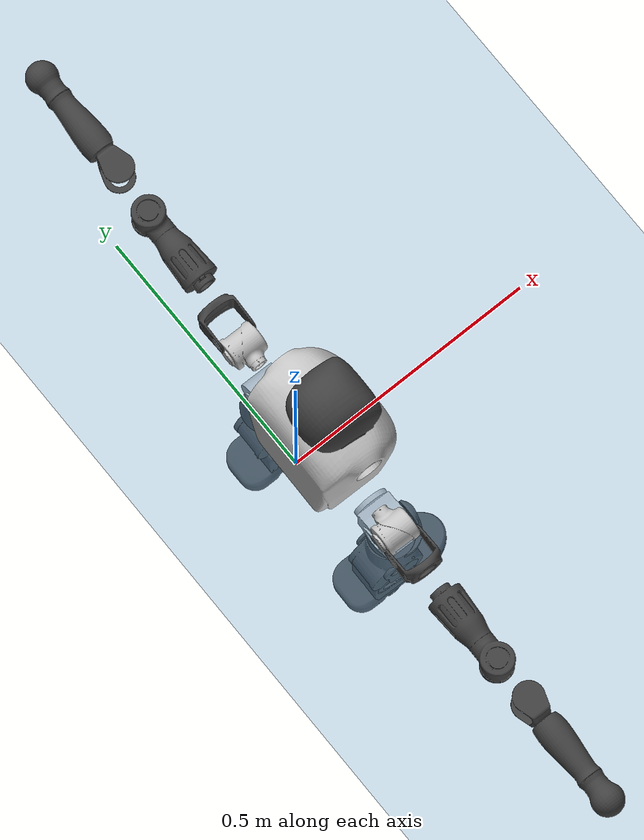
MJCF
<mujoco model="T1">
  <compiler angle="radian" assetdir="assets" balanceinertia="true" inertiafromgeom="false"/>

  <option timestep="0.005" density="1.2" viscosity="2e-05"/>

  <size nkey="1"/>

  <visual>
    <quality shadowsize="8192"/>
    <map shadowclip="0.5"/>
  </visual>

  <default>
    <default class="/">
      <joint armature="0.01" damping="0.01" frictionloss="0.1"/>
      <geom contype="0" conaffinity="0" group="1" solref="-1000 -80"/>
      <site size="0.01 0.005 0.005" group="5"/>
      <general forcelimited="true" biastype="affine" gainprm="25" biasprm="0 -25 -0.6"/>
      <default class="t1">
        <geom rgba="0.25 0.25 0.25 1"/>
        <default class="visual">
          <geom type="mesh" group="2"/>
        </default>
        <default class="collision">
          <geom group="3"/>
        </default>
        <default class="foot">
          <geom size="0.1115 0.05 0.015" type="box" condim="6" group="4" priority="1" solimp="0.015 1 0.015"/>
        </default>
        <default class="reward_collision_sphere">
          <geom group="5" rgba="1 0 0 1"/>
        </default>
      </default>
    </default>
  </default>

  <asset>
    <texture type="skybox" colorspace="auto" name="//unnamed_texture_0" builtin="gradient" rgb1="0.95 0.95 0.95" rgb2="0.95 0.95 0.95" width="100" height="600"/>
    <texture type="2d" colorspace="auto" name="texplane" builtin="checker" rgb1="0.345 0.575 0.748" rgb2="0.345 0.575 0.748" markrgb="1 1 1" width="512" height="512"/>
    <material name="MatPlane" class="/" texture="texplane" texuniform="true" texrepeat="2 2" specular="0.9"/>
    <mesh name="Trunk" class="/" file="Trunk.stl"/>
    <mesh name="H1" class="/" file="H1.stl"/>
    <mesh name="H2" class="/" file="H2.stl"/>
    <mesh name="AL1" class="/" file="AL1.stl"/>
    <mesh name="AL2" class="/" file="AL2.stl"/>
    <mesh name="AL3" class="/" file="AL3.stl"/>
    <mesh name="left_hand_link" class="/" file="left_hand_link.stl"/>
    <mesh name="AR1" class="/" file="AR1.stl"/>
    <mesh name="AR2" class="/" file="AR2.stl"/>
    <mesh name="AR3" class="/" file="AR3.stl"/>
    <mesh name="right_hand_link" class="/" file="right_hand_link.stl"/>
    <mesh name="Waist" class="/" file="Waist.stl"/>
    <mesh name="Hip_Pitch_Left" class="/" file="Hip_Pitch_Left.stl"/>
    <mesh name="Hip_Roll_Left" class="/" file="Hip_Roll_Left.stl"/>
    <mesh name="Hip_Yaw_Left" class="/" file="Hip_Yaw_Left.stl"/>
    <mesh name="Shank_Left" class="/" file="Shank_Left.stl"/>
    <mesh name="Ankle_Cross_Left" class="/" file="Ankle_Cross_Left.stl"/>
    <mesh name="left_foot_link" class="/" file="left_foot_link.stl"/>
    <mesh name="Hip_Pitch_Right" class="/" file="Hip_Pitch_Right.stl"/>
    <mesh name="Hip_Roll_Right" class="/" file="Hip_Roll_Right.stl"/>
    <mesh name="Hip_Yaw_Right" class="/" file="Hip_Yaw_Right.stl"/>
    <mesh name="Shank_Right" class="/" file="Shank_Right.stl"/>
    <mesh name="Ankle_Cross_Right" class="/" file="Ankle_Cross_Right.stl"/>
    <mesh name="right_foot_link" class="/" file="right_foot_link.stl"/>
  </asset>

  <worldbody>
    <geom name="floor" class="/" size="100 100 0.125" type="plane" group="0" material="MatPlane"/>
    <light name="toplight_shadow" class="/" pos="0 0 5" dir="0.0990148 0.0990148 -0.990148" type="directional" ambient="0.04 0.04 0.04" diffuse="0.55 0.55 0.55" specular="0.12 0.12 0.12"/>
    <light name="toplight_fill" class="/" pos="0 0 5" dir="0.0990148 0.0990148 -0.990148" type="directional" castshadow="false" ambient="0.04 0.04 0.04" diffuse="0.3 0.3 0.3" specular="0.08 0.08 0.08"/>
    <body name="trunk" childclass="t1" pos="-0.000743901 -0.00968285 0.0140983" quat="0.999972 0.000787014 -0.00438409 -0.00607157">
      <inertial pos="0.0494639 0.000963894 0.0606772" quat="0.99993 -0.00367951 -0.0107795 -0.00335503" mass="13.8814" diaginertia="0.0792571 0.746727 0.00517984"/>
      <joint name="//unnamed_joint_0" type="free" armature="0" damping="0" frictionloss="0"/>
      <geom name="//unnamed_geom_1" class="visual" rgba="0.76 0.76 0.76 1" mesh="Trunk"/>
      <geom name="//unnamed_geom_2" class="collision" size="0.0768799 0.102507 0.15376" pos="0.0554451 0 0.0709" type="box"/>
      <geom name="//unnamed_geom_3" class="reward_collision_sphere" size="0.117883" pos="0.0554451 0 0.0590833"/>
      <geom name="//unnamed_geom_4" class="reward_collision_sphere" size="0.015376" pos="0.0554451 0.132624 0"/>
      <geom name="//unnamed_geom_5" class="reward_collision_sphere" size="0.015376" pos="0.0554451 -0.132624 0"/>
      <geom name="//unnamed_geom_6" class="reward_collision_sphere" size="0.015376" pos="0.0554451 0.16695 0.10635"/>
      <geom name="//unnamed_geom_7" class="reward_collision_sphere" size="0.015376" pos="0.0554451 -0.16695 0.10635"/>
      <site name="imu" pos="0.0694882 0.0102359 -0.00157592" size="0.0102507"/>
      <camera name="track" pos="0 -3.12055 0" quat="0.707107 0.707107 0 0" mode="trackcom"/>
      <camera name="ego_camera" pos="0.112738 0 0.24815" quat="-0.5 -0.5 0.5 0.5"/>
      <body name="H1" pos="0.0479028 -0.000176793 0.133308" quat="0.999978 0.0050772 0.00158725 -0.00406965">
        <inertial pos="-0.0121038 -0.0100925 0.0292371" quat="0.76581 -0.0174247 0.00516524 0.64281" mass="0.401888" diaginertia="0.000139188 0.00165932 1.16302e-05"/>
        <joint name="AAHead_yaw" pos="0 0 0" axis="0.0011932 -0.00733059 0.999972" range="-1.25634 1.67209" armature="0.00938081" damping="0.044184" frictionloss="0.0688219"/>
        <geom name="//unnamed_geom_8" class="visual" mesh="H1"/>
        <body name="H2" pos="0.00473495 -0.00499866 0.0258847" quat="0.999973 -0.00010406 9.62472e-05 0.00729598">
          <inertial pos="0.00369811 -0.00158046 0.0576924" quat="0.988648 0.105688 -0.0727794 -0.078152" mass="0.811323" diaginertia="0.0015624 0.0204095 0.000126014"/>
          <joint name="Head_pitch" pos="0 0 0" axis="0.0641233 -0.997661 0.0236587" stiffness="0.0375329" range="-1.00511 0.0692746" armature="0.00408708" damping="0" frictionloss="0.0276081"/>
          <geom name="//unnamed_geom_9" class="visual" mesh="H2"/>
          <geom name="//unnamed_geom_10" class="collision" size="0.0820052" pos="0.00924085 0 0.0649917"/>
          <geom name="//unnamed_geom_11" class="reward_collision_sphere" size="0.0922559" pos="0.0184817 0 0.0590833"/>
        </body>
      </body>
      <body name="AL1" pos="0.0389607 0.156841 0.121051" quat="0.999999 0.000128923 0.00128307 0.000422788">
        <inertial pos="0.0142571 0.0771931 0.00767573" quat="0.49395 0.528955 -0.464713 0.510158" mass="0.636553" diaginertia="0.000961102 0.0107045 2.40465e-05"/>
        <joint name="Left_Shoulder_Pitch" pos="0 0 0" axis="-0.0057638 0.999964 -0.00615743" range="-3.24348 1.23585" armature="0.00904212" damping="0" frictionloss="0.137576"/>
        <geom name="//unnamed_geom_12" class="visual" rgba="0.76 0.76 0.76 1" mesh="AL1"/>
        <body name="AL2" pos="-0.00173168 0.0750975 0.0143217" quat="0.999976 0.00628434 1.25506e-05 0.00297216">
          <inertial pos="0.00998094 0.0593507 0.0127272" quat="0.497494 0.505903 -0.510159 0.486107" mass="0.148027" diaginertia="0.000287004 0.00357633 1.19755e-05"/>
          <joint name="Left_Shoulder_Roll" pos="0 0 0" axis="-0.997498 -0.055113 0.0442825" range="-1.56222 1.82772" armature="0.00856348" damping="0" frictionloss="0.174418"/>
          <geom name="//unnamed_geom_13" class="visual" mesh="AL2"/>
          <body name="AL3" pos="0.0144146 0.102275 0.00302112" quat="0.999999 -0.00100536 2.04263e-05 -0.000250993">
            <inertial pos="0.00364044 0.13262 -0.0129938" quat="0.704744 0.70945 0.00371294 -0.00164608" mass="1.09818" diaginertia="0.00775972 0.119181 4.86356e-05"/>
            <joint name="Left_Elbow_Pitch" pos="0 0 0" axis="-0.0212094 -0.997795 -0.0628849" range="-2.34457 2.26839" armature="0.0133652" damping="0.00841065" frictionloss="0.0667071"/>
            <geom name="//unnamed_geom_14" class="visual" mesh="AL3"/>
            <geom name="//unnamed_geom_15" class="collision" size="0.030752 0.0768799" pos="0 0.0780139 0" quat="0.707105 0.707108 0 0" type="cylinder"/>
            <geom name="//unnamed_geom_16" class="reward_collision_sphere" size="0.0369024"/>
            <body name="left_hand_link" pos="0.00982588 0.243079 -0.0151013" quat="0.999995 0.0017251 -0.00141582 -0.00218281">
              <inertial pos="-0.000249046 0.163443 -0.0103658" quat="0.708548 0.705655 0.00201717 -0.00251836" mass="0.31219" diaginertia="0.00528724 0.0535231 1.2599e-05"/>
              <joint name="Left_Elbow_Yaw" pos="0 0 0" axis="-0.0145698 -0.062334 0.997949" stiffness="0.0532583" range="-2.5523 -0.0102405" armature="0.00931154" damping="0.00564013" frictionloss="0.0537172"/>
              <geom name="//unnamed_geom_17" class="visual" mesh="left_hand_link"/>
              <geom name="//unnamed_geom_18" class="collision" size="0.030752 0.0896932" pos="0 0.202836 0" quat="0.707105 0.707108 0 0" type="cylinder"/>
              <geom name="//unnamed_geom_19" class="reward_collision_sphere" size="0.0512533"/>
              <geom name="//unnamed_geom_20" class="reward_collision_sphere" size="0.0358773" pos="0 0.17163 0"/>
              <geom name="//unnamed_geom_21" class="reward_collision_sphere" size="0.0358773" pos="0 0.33546 0"/>
            </body>
          </body>
        </body>
      </body>
      <body name="AR1" pos="0.0418411 -0.167479 0.117121" quat="0.999976 0.00168371 0.00283769 -0.00602236">
        <inertial pos="-0.000367449 -0.062739 -0.00425384" quat="0.471917 0.512602 -0.516391 0.49787" mass="0.620164" diaginertia="0.00113877 0.0129723 2.26562e-05"/>
        <joint name="Right_Shoulder_Pitch" pos="0 0 0" axis="0.0149499 -0.999666 0.0210675" stiffness="0.0629939" range="-1.23708 3.11586" armature="0.012986" damping="0.0691037" frictionloss="0.0913144"/>
        <geom name="//unnamed_geom_22" class="visual" rgba="0.76 0.76 0.76 1" mesh="AR1"/>
        <body name="AR2" pos="0.000283929 -0.0789315 -0.00545495" quat="0.999989 0.00320474 -0.00140168 0.00312229">
          <inertial pos="0.0103547 -0.0595855 -0.010061" quat="0.512635 0.486364 -0.511871 0.488511" mass="0.197261" diaginertia="0.000216725 0.00327317 1.45669e-05"/>
          <joint name="Right_Shoulder_Roll" pos="0 0 0" axis="-0.999994 0.00320759 0.00140932" stiffness="0.00675808" range="-1.83992 1.57973" armature="0.00901055" damping="0" frictionloss="0.0373683"/>
          <geom name="//unnamed_geom_23" class="visual" mesh="AR2"/>
          <body name="AR3" pos="-0.00427629 -0.106501 0.00565192" quat="0.999997 -8.46404e-05 0.00158543 0.00189663">
            <inertial pos="0.0146134 -0.133305 -0.00430005" quat="0.706161 0.706114 -0.0506586 -0.013146" mass="0.86797" diaginertia="0.00930993 0.130395 4.44407e-05"/>
            <joint name="Right_Elbow_Pitch" pos="0 0 0" axis="-0.039511 0.99915 -0.011747" stiffness="0.0762563" range="-2.25742 2.43061" armature="0.0166147" damping="0.0115146" frictionloss="0.113177"/>
            <geom name="//unnamed_geom_24" class="visual" mesh="AR3"/>
            <geom name="//unnamed_geom_25" class="collision" size="0.030752 0.0768799" pos="0 -0.0780139 0" quat="0.707105 0.707108 0 0" type="cylinder"/>
            <geom name="//unnamed_geom_26" class="reward_collision_sphere" size="0.0369024"/>
            <body name="right_hand_link" pos="0.0021337 -0.228958 -0.0146686" quat="1 0.000609475 -0.000242054 0.00017408">
              <inertial pos="0.00981117 -0.182007 0.00574087" quat="0.707751 0.705967 -0.0217843 0.0149826" mass="0.382581" diaginertia="0.00555046 0.089274 1.53393e-05"/>
              <joint name="Right_Elbow_Yaw" pos="0 0 0" axis="0.0226649 -0.0146321 0.999636" stiffness="0.0265553" range="0.0366041 2.4244" armature="0.0136786" damping="0.0433659" frictionloss="0.0954621"/>
              <geom name="//unnamed_geom_27" class="visual" mesh="right_hand_link"/>
              <geom name="//unnamed_geom_28" class="collision" size="0.030752 0.0896932" pos="0 -0.202836 0" quat="0.707105 0.707108 0 0" type="cylinder"/>
              <geom name="//unnamed_geom_29" class="reward_collision_sphere" size="0.0512533"/>
              <geom name="//unnamed_geom_30" class="reward_collision_sphere" size="0.0358773" pos="0 -0.17163 0"/>
              <geom name="//unnamed_geom_31" class="reward_collision_sphere" size="0.0358773" pos="0 -0.33546 0"/>
            </body>
          </body>
        </body>
      </body>
      <body name="Waist" pos="0.0586123 0.00340987 -0.0780471" quat="1 -0.000225691 0.000356876 0.000191268">
        <inertial pos="-0.00640638 -0.000499609 -0.00243673" quat="0.98356 -0.000440624 -0.180543 0.00366163" mass="2.67699" diaginertia="0.00383794 0.0387254 0.000361399"/>
        <joint name="Waist" pos="0 0 0" axis="0.00521219 0.0230829 0.99972" stiffness="0.0461154" range="-1.35365 1.40724" armature="0.0108929" damping="0.0767339" frictionloss="0.097658"/>
        <geom name="//unnamed_geom_32" class="visual" mesh="Waist"/>
        <body name="Hip_Pitch_Left" pos="-0.000596978 0.150161 -0.0127732" quat="1 -6.96324e-06 -2.48406e-05 -4.33122e-06">
          <inertial pos="0.0101719 -0.011962 0.00431982" quat="0.975876 0.215906 0.0284754 -0.015467" mass="0.926195" diaginertia="0.00108751 0.0134848 8.75755e-05"/>
          <joint name="Left_Hip_Pitch" pos="0 0 0" axis="0.0257011 0.998987 0.0369384" stiffness="0.058918" range="-2.03715 1.5616" armature="0.0103893" damping="0.0692355" frictionloss="0.165311"/>
          <geom name="//unnamed_geom_33" class="visual" rgba="0.76 0.76 0.76 1" mesh="Hip_Pitch_Left"/>
          <body name="Hip_Roll_Left" pos="-0.0073625 0.000179959 -0.0125917" quat="1 3.44241e-05 0.000205307 -0.000178798">
            <inertial pos="0.00217134 0.00383967 -0.0314558" quat="0.720969 0.00665681 0.022019 0.692586" mass="0.367308" diaginertia="0.00106525 0.0108103 3.19847e-05"/>
            <joint name="Left_Hip_Roll" pos="0 0 0" axis="-0.999568 0.0245516 -0.016144" range="-1.78069 0.178839" armature="0.0107213" damping="0" frictionloss="0.156257"/>
            <geom name="//unnamed_geom_34" class="visual" mesh="Hip_Roll_Left"/>
            <geom name="//unnamed_geom_35" class="reward_collision_sphere" size="0.0563786"/>
            <body name="Hip_Yaw_Left" pos="0.0114094 -0.00342307 -0.0635465" quat="1 -1.89552e-05 -9.92922e-05 -0.000219189">
              <inertial pos="-0.0103923 -7.66258e-05 -0.0390393" quat="0.706534 -0.00884061 -0.0215823 0.707295" mass="2.62527" diaginertia="0.013903 0.217506 0.000187596"/>
              <joint name="Left_Hip_Yaw" pos="0 0 0" axis="-0.0546981 0.0016194 -0.998502" stiffness="0.0773082" range="-1.01507 0.784836" armature="0.0160741" damping="0.0550283" frictionloss="0.168547"/>
              <geom name="//unnamed_geom_36" class="visual" mesh="Hip_Yaw_Left"/>
              <geom name="//unnamed_geom_37" class="collision" size="0.0512533 0.0820052" type="cylinder"/>
              <body name="Shank_Left" pos="-0.00385472 -0.0135485 -0.0915003" quat="0.999973 0.00322863 -0.00603035 0.00266336">
                <inertial pos="-0.01354 0.0159487 -0.0670866" quat="0.997795 0.00998287 -0.0639342 0.0147911" mass="1.67859" diaginertia="0.0179688 0.293053 0.000119212"/>
                <joint name="Left_Knee_Pitch" pos="0 0 0" axis="-0.024463 0.999143 0.0333837" range="0.0938366 2.31976" armature="0.00483692" damping="0.0318313" frictionloss="0.17129"/>
                <geom name="//unnamed_geom_38" class="visual" mesh="Shank_Left"/>
                <geom name="//unnamed_geom_39" class="collision" size="0.0512533 0.0768799" pos="0 0 -0.0709" type="cylinder"/>
                <geom name="//unnamed_geom_40" class="reward_collision_sphere" size="0.0666293"/>
                <body name="Ankle_Cross_Left" pos="0.0145582 0.00616378 -0.168109" quat="1 0.000204578 0.000219958 -0.000536302">
                  <inertial pos="-0.00515348 0.00176513 -0.00562016" quat="0.404372 0.521894 0.5644 0.495542" mass="0.0680162" diaginertia="1.93356e-05 0.000227001 7.674e-07"/>
                  <joint name="Left_Ankle_Pitch" pos="0 0 0" axis="-0.0459471 0.998926 -0.00590906" range="-0.858969 0.604358" armature="0.0109306" damping="0.00592946" frictionloss="0.101709"/>
                  <geom name="//unnamed_geom_41" class="visual" mesh="Ankle_Cross_Left"/>
                  <body name="left_foot_link" pos="-0.0107276 -0.00037614 -0.00972021" quat="0.999989 -0.00174268 -0.00151998 0.00416313">
                    <inertial pos="-0.00115004 -0.000731673 -0.0207476" quat="-0.00175707 0.620751 -0.0047758 0.783992" mass="0.889085" diaginertia="0.00221744 0.0241391 0.000187258"/>
                    <joint name="Left_Ankle_Roll" pos="0 0 0" axis="-0.999006 0.0429501 0.011897" range="-0.234825 0.296144" armature="0.00981013" damping="0" frictionloss="0.1059"/>
                    <geom name="//unnamed_geom_42" class="visual" mesh="left_foot_link"/>
                    <geom name="left_foot" class="foot" size="0.0569557 0.0245296 0.0110169" pos="0.00924085 0 -0.0088625"/>
                    <geom name="//unnamed_geom_44" class="reward_collision_sphere" size="0.0533034" pos="0.00924085 0 -0.0088625"/>
                    <geom name="//unnamed_geom_45" class="reward_collision_sphere" size="0.030752" pos="0.0877881 -0.0358864 -0.0088625"/>
                    <geom name="//unnamed_geom_46" class="reward_collision_sphere" size="0.030752" pos="-0.064686 -0.0358864 -0.0088625"/>
                    <site name="left_foot" class="foot" pos="0.00924085 0 -0.0088625" size="0.0102507"/>
                  </body>
                </body>
              </body>
            </body>
          </body>
        </body>
        <body name="Hip_Pitch_Right" pos="0.0109865 -0.165713 -0.0127309" quat="0.999976 0.000298809 -0.00667819 -0.00167241">
          <inertial pos="0.0017723 0.0266041 -0.0153172" quat="0.979377 -0.201382 0.00582825 0.0152265" mass="1.03859" diaginertia="0.0011087 0.0125437 7.58749e-05"/>
          <joint name="Right_Hip_Pitch" pos="0 0 0" axis="-0.00338945 -0.999982 -0.00504097" stiffness="0.0442609" range="-1.75723 2.05282" armature="0.0103658" damping="0" frictionloss="0.0281313"/>
          <geom name="//unnamed_geom_47" class="visual" rgba="0.76 0.76 0.76 1" mesh="Hip_Pitch_Right"/>
          <body name="Hip_Roll_Right" pos="0.0130831 0.000929706 -0.0231561" quat="1 -0.000238091 -0.000128377 -0.000260738">
            <inertial pos="0.00697795 0.00097485 -0.039413" quat="0.704867 -0.0074873 -0.00602096 0.709275" mass="0.415748" diaginertia="0.00140471 0.0128996 3.43224e-05"/>
            <joint name="Right_Hip_Roll" pos="0 0 0" axis="-0.999168 -0.0111089 -0.0392497" range="-0.394681 1.69661" armature="0.00970305" damping="0.0462747" frictionloss="0.0414066"/>
            <geom name="//unnamed_geom_48" class="visual" mesh="Hip_Roll_Right"/>
            <geom name="//unnamed_geom_49" class="reward_collision_sphere" size="0.0563786"/>
            <body name="Hip_Yaw_Right" pos="-0.011508 -0.00107693 -0.0606865" quat="1 0.000303763 -0.000426891 0.000119797">
              <inertial pos="0.00557427 -0.015575 -0.0566323" quat="0.713862 -0.0345375 -0.0330878 0.698651" mass="2.99698" diaginertia="0.017286 0.258894 0.000240584"/>
              <joint name="Right_Hip_Yaw" pos="0 0 0" axis="-0.000678482 -0.0314907 -0.999504" stiffness="0.0179721" range="-1.07124 0.966545" armature="0.0105008" damping="0" frictionloss="0.100254"/>
              <geom name="//unnamed_geom_50" class="visual" mesh="Hip_Yaw_Right"/>
              <geom name="//unnamed_geom_51" class="collision" size="0.0512533 0.0820052" type="cylinder"/>
              <body name="Shank_Right" pos="-0.0116281 0.000706463 -0.0938958" quat="1 0.000296231 -0.000179076 0.000345771">
                <inertial pos="0.0106685 -0.00639666 -0.0624517" quat="0.996837 -0.0284799 -0.0723597 0.0163833" mass="1.98937" diaginertia="0.029381 0.32988 0.000164905"/>
                <joint name="Right_Knee_Pitch" pos="0 0 0" axis="-0.00150072 -0.999998 0.00146779" range="-2.35773 0.26116" armature="0.0107018" damping="0" frictionloss="0.155111"/>
                <geom name="//unnamed_geom_52" class="visual" mesh="Shank_Right"/>
                <geom name="//unnamed_geom_53" class="collision" size="0.0512533 0.0768799" pos="0 0 -0.0709" type="cylinder"/>
                <geom name="//unnamed_geom_54" class="reward_collision_sphere" size="0.0666293"/>
                <body name="Ankle_Cross_Right" pos="0.00830372 0.00748841 -0.152804" quat="0.999995 -0.00273793 -0.000865913 -0.000927755">
                  <inertial pos="-0.00310571 0.00827317 -0.0033787" quat="0.461623 0.528033 0.574108 0.422475" mass="0.0927866" diaginertia="2.09022e-05 0.000260654 8.79587e-07"/>
                  <joint name="Right_Ankle_Pitch" pos="0 0 0" axis="-0.000582267 -0.999996 0.00266951" range="-0.668716 0.679397" armature="0.011616" damping="0" frictionloss="0.106748"/>
                  <geom name="//unnamed_geom_55" class="visual" mesh="Ankle_Cross_Right"/>
                  <body name="right_foot_link" pos="0.00283189 0.00335358 -0.0165767" quat="1 -4.64896e-05 5.67653e-05 7.47327e-05">
                    <inertial pos="-0.00183686 0.00647104 -0.0203556" quat="0.0112502 0.612608 -0.00106159 0.790306" mass="0.759154" diaginertia="0.00178844 0.024384 0.000165346"/>
                    <joint name="Right_Ankle_Roll" pos="0 0 0" axis="-1 9.51007e-05 0.000595057" range="-0.342773 0.432065" armature="0.00921073" damping="0.0373763" frictionloss="0.0211874"/>
                    <geom name="//unnamed_geom_56" class="visual" mesh="right_foot_link"/>
                    <geom name="right_foot" class="foot" size="0.0693007 0.0808129 0.00620846" pos="0.00924085 0 -0.0088625"/>
                    <geom name="//unnamed_geom_58" class="reward_collision_sphere" size="0.0410026"/>
                    <geom name="//unnamed_geom_59" class="reward_collision_sphere" size="0.030752" pos="0.00924085 0 -0.0088625"/>
                    <geom name="//unnamed_geom_60" class="reward_collision_sphere" size="0.030752" pos="0.0877881 0.0358864 -0.0088625"/>
                    <geom name="//unnamed_geom_61" class="reward_collision_sphere" size="0.030752" pos="-0.064686 0.0358864 -0.0088625"/>
                    <site name="right_foot" class="foot" pos="0.00924085 0 -0.0088625" size="0.0102507"/>
                  </body>
                </body>
              </body>
            </body>
          </body>
        </body>
      </body>
    </body>
  </worldbody>

  <contact>
    <pair class="/" geom1="floor" geom2="left_foot" name="//unnamed_contact_0"/>
    <pair class="/" geom1="floor" geom2="right_foot" name="//unnamed_contact_1"/>
  </contact>

  <actuator>
    <general name="AAHead_yaw" class="/" joint="AAHead_yaw" forcerange="-6.90475 6.90475" gainprm="18.3585" biasprm="0 -18.3585 -0.594868"/>
    <general name="Head_pitch" class="/" joint="Head_pitch" forcerange="-5.15578 5.15578" gainprm="18.3585" biasprm="0 -18.3585 -0.594868"/>
    <general name="Left_Shoulder_Pitch" class="/" joint="Left_Shoulder_Pitch" forcerange="-23.4164 23.4164" gainprm="18.3585" biasprm="0 -18.3585 -0.594868"/>
    <general name="Left_Shoulder_Roll" class="/" joint="Left_Shoulder_Roll" forcerange="-15.0366 15.0366" gainprm="18.3585" biasprm="0 -18.3585 -0.594868"/>
    <general name="Left_Elbow_Pitch" class="/" joint="Left_Elbow_Pitch" forcerange="-27.1182 27.1182" gainprm="18.3585" biasprm="0 -18.3585 -0.594868"/>
    <general name="Left_Elbow_Yaw" class="/" joint="Left_Elbow_Yaw" forcerange="-18.5106 18.5106" gainprm="18.3585" biasprm="0 -18.3585 -0.594868"/>
    <general name="Right_Shoulder_Pitch" class="/" joint="Right_Shoulder_Pitch" forcerange="-15.7454 15.7454" gainprm="18.3585" biasprm="0 -18.3585 -0.594868"/>
    <general name="Right_Shoulder_Roll" class="/" joint="Right_Shoulder_Roll" forcerange="-12.1884 12.1884" gainprm="18.3585" biasprm="0 -18.3585 -0.594868"/>
    <general name="Right_Elbow_Pitch" class="/" joint="Right_Elbow_Pitch" forcerange="-18.263 18.263" gainprm="18.3585" biasprm="0 -18.3585 -0.594868"/>
    <general name="Right_Elbow_Yaw" class="/" joint="Right_Elbow_Yaw" forcerange="-17.6972 17.6972" gainprm="18.3585" biasprm="0 -18.3585 -0.594868"/>
    <general name="Waist" class="/" joint="Waist" forcerange="-32.0268 32.0268" gainprm="18.3585" biasprm="0 -18.3585 -0.594868"/>
    <general name="Left_Hip_Pitch" class="/" joint="Left_Hip_Pitch" forcerange="-44.6957 44.6957" gainprm="18.3585" biasprm="0 -18.3585 -0.594868"/>
    <general name="Left_Hip_Roll" class="/" joint="Left_Hip_Roll" forcerange="-13.9866 13.9866" gainprm="18.3585" biasprm="0 -18.3585 -0.594868"/>
    <general name="Left_Hip_Yaw" class="/" joint="Left_Hip_Yaw" forcerange="-41.5338 41.5338" gainprm="18.3585" biasprm="0 -18.3585 -0.594868"/>
    <general name="Left_Knee_Pitch" class="/" joint="Left_Knee_Pitch" forcerange="-29.3264 29.3264" gainprm="18.3585" biasprm="0 -18.3585 -0.594868"/>
    <general name="Left_Ankle_Pitch" class="/" joint="Left_Ankle_Pitch" forcerange="-27.5207 27.5207" gainprm="18.3585" biasprm="0 -18.3585 -0.594868"/>
    <general name="Left_Ankle_Roll" class="/" joint="Left_Ankle_Roll" forcerange="-20.2991 20.2991" gainprm="18.3585" biasprm="0 -18.3585 -0.594868"/>
    <general name="Right_Hip_Pitch" class="/" joint="Right_Hip_Pitch" forcerange="-68.5823 68.5823" gainprm="18.3585" biasprm="0 -18.3585 -0.594868"/>
    <general name="Right_Hip_Roll" class="/" joint="Right_Hip_Roll" forcerange="-33.8121 33.8121" gainprm="18.3585" biasprm="0 -18.3585 -0.594868"/>
    <general name="Right_Hip_Yaw" class="/" joint="Right_Hip_Yaw" forcerange="-19.6809 19.6809" gainprm="18.3585" biasprm="0 -18.3585 -0.594868"/>
    <general name="Right_Knee_Pitch" class="/" joint="Right_Knee_Pitch" forcerange="-64.1888 64.1888" gainprm="18.3585" biasprm="0 -18.3585 -0.594868"/>
    <general name="Right_Ankle_Pitch" class="/" joint="Right_Ankle_Pitch" forcerange="-21.2682 21.2682" gainprm="18.3585" biasprm="0 -18.3585 -0.594868"/>
    <general name="Right_Ankle_Roll" class="/" joint="Right_Ankle_Roll" forcerange="-16.1875 16.1875" gainprm="18.3585" biasprm="0 -18.3585 -0.594868"/>
  </actuator>

  <sensor>
    <gyro site="imu" name="imu_angular_velocity"/>
    <velocimeter site="imu" name="imu_linear_velocity"/>
    <framelinvel objtype="site" objname="left_foot" name="left_foot_global_linear_velocity"/>
    <framelinvel objtype="site" objname="right_foot" name="right_foot_global_linear_velocity"/>
  </sensor>

  <keyframe>
    <key name="home" qpos="0 0 0.6385 1 0 0 0 0 0 0 1.4 0 -0.4 0 -1.4 0 0.4 0 -0.4 0 0 0.8 -0.4 0 0.4 0 0 -0.8 0.4 0"/>
  </keyframe>
</mujoco>
